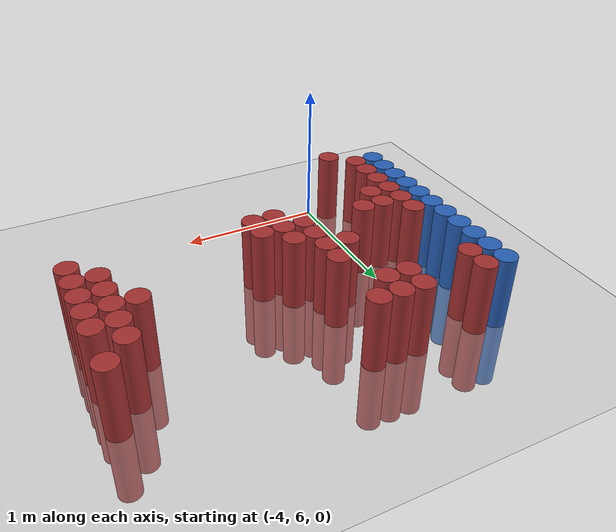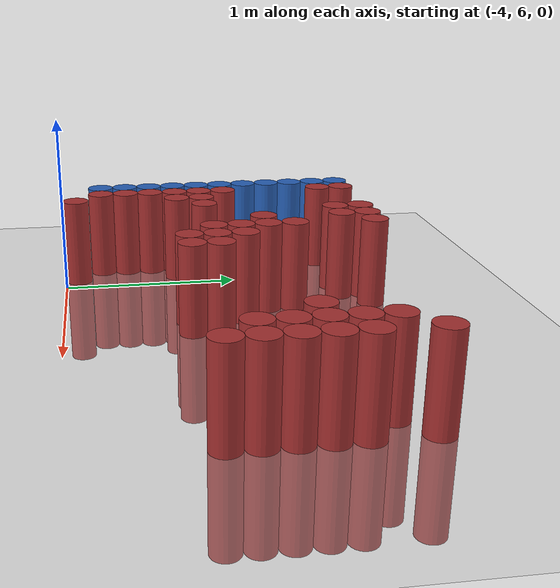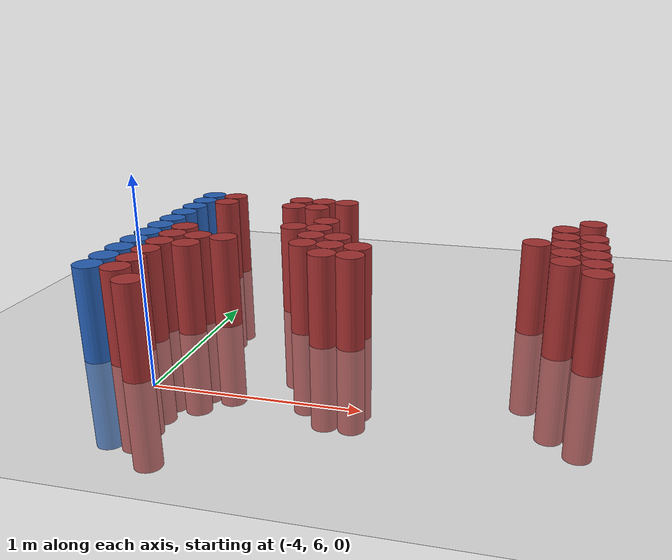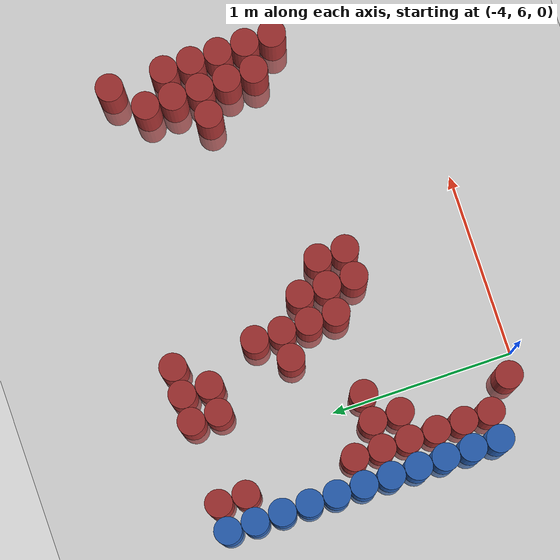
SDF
<sdf version="1.6">
 <world name="default">
  <model name="ground_plane">
   <static>1</static>
   <link name="link">
    <collision name="collision">
     <geometry><plane><normal>0 0 1</normal><size>100 100</size></plane></geometry>
     <surface><friction><ode><mu>100</mu><mu2>50</mu2></ode></friction></surface>
    </collision>
    <visual name="visual">
     <cast_shadows>0</cast_shadows>
     <geometry><plane><normal>0 0 1</normal><size>100 100</size></plane></geometry>
     <material>
      <script><uri>file://media/materials/scripts/gazebo.material</uri><name>Gazebo/Grey</name></script>
     </material>
    </visual>
   </link>
  </model>
  <model name="unit_cylinder_103">
   <static>1</static>
   <pose>-4.425000 6.225000 0.000000 0.000000 0.000000 0.000000</pose>
   <link name="link">
    <inertial>
     <mass>1</mass>
     <inertia><ixx>0.145833</ixx><ixy>0</ixy><ixz>0</ixz><iyy>0.145833</iyy><iyz>0</iyz><izz>0.125</izz></inertia>
    </inertial>
    <collision name="collision">
     <geometry><cylinder><radius>0.075000</radius><length>1</length></cylinder></geometry>
    </collision>
    <visual name="visual">
     <geometry><cylinder><radius>0.075000</radius><length>1</length></cylinder></geometry>
     <material>
      <ambient>0.152000 0.379000 0.720000 1</ambient>
      <diffuse>0.152000 0.379000 0.720000 1</diffuse>
     </material>
     <material>
      <script><name>Gazebo/Grey</name><uri>file://media/materials/scripts/gazebo.material</uri></script>
     </material>
    </visual>
   </link>
  </model>
  <model name="unit_cylinder_104">
   <static>1</static>
   <pose>-4.425000 6.375000 0.000000 0.000000 0.000000 0.000000</pose>
   <link name="link">
    <inertial>
     <mass>1</mass>
     <inertia><ixx>0.145833</ixx><ixy>0</ixy><ixz>0</ixz><iyy>0.145833</iyy><iyz>0</iyz><izz>0.125</izz></inertia>
    </inertial>
    <collision name="collision">
     <geometry><cylinder><radius>0.075000</radius><length>1</length></cylinder></geometry>
    </collision>
    <visual name="visual">
     <geometry><cylinder><radius>0.075000</radius><length>1</length></cylinder></geometry>
     <material>
      <ambient>0.152000 0.379000 0.720000 1</ambient>
      <diffuse>0.152000 0.379000 0.720000 1</diffuse>
     </material>
     <material>
      <script><name>Gazebo/Grey</name><uri>file://media/materials/scripts/gazebo.material</uri></script>
     </material>
    </visual>
   </link>
  </model>
  <model name="unit_cylinder_105">
   <static>1</static>
   <pose>-4.425000 6.525000 0.000000 0.000000 0.000000 0.000000</pose>
   <link name="link">
    <inertial>
     <mass>1</mass>
     <inertia><ixx>0.145833</ixx><ixy>0</ixy><ixz>0</ixz><iyy>0.145833</iyy><iyz>0</iyz><izz>0.125</izz></inertia>
    </inertial>
    <collision name="collision">
     <geometry><cylinder><radius>0.075000</radius><length>1</length></cylinder></geometry>
    </collision>
    <visual name="visual">
     <geometry><cylinder><radius>0.075000</radius><length>1</length></cylinder></geometry>
     <material>
      <ambient>0.152000 0.379000 0.720000 1</ambient>
      <diffuse>0.152000 0.379000 0.720000 1</diffuse>
     </material>
     <material>
      <script><name>Gazebo/Grey</name><uri>file://media/materials/scripts/gazebo.material</uri></script>
     </material>
    </visual>
   </link>
  </model>
  <model name="unit_cylinder_106">
   <static>1</static>
   <pose>-4.425000 6.675000 0.000000 0.000000 0.000000 0.000000</pose>
   <link name="link">
    <inertial>
     <mass>1</mass>
     <inertia><ixx>0.145833</ixx><ixy>0</ixy><ixz>0</ixz><iyy>0.145833</iyy><iyz>0</iyz><izz>0.125</izz></inertia>
    </inertial>
    <collision name="collision">
     <geometry><cylinder><radius>0.075000</radius><length>1</length></cylinder></geometry>
    </collision>
    <visual name="visual">
     <geometry><cylinder><radius>0.075000</radius><length>1</length></cylinder></geometry>
     <material>
      <ambient>0.152000 0.379000 0.720000 1</ambient>
      <diffuse>0.152000 0.379000 0.720000 1</diffuse>
     </material>
     <material>
      <script><name>Gazebo/Grey</name><uri>file://media/materials/scripts/gazebo.material</uri></script>
     </material>
    </visual>
   </link>
  </model>
  <model name="unit_cylinder_107">
   <static>1</static>
   <pose>-4.425000 6.825000 0.000000 0.000000 0.000000 0.000000</pose>
   <link name="link">
    <inertial>
     <mass>1</mass>
     <inertia><ixx>0.145833</ixx><ixy>0</ixy><ixz>0</ixz><iyy>0.145833</iyy><iyz>0</iyz><izz>0.125</izz></inertia>
    </inertial>
    <collision name="collision">
     <geometry><cylinder><radius>0.075000</radius><length>1</length></cylinder></geometry>
    </collision>
    <visual name="visual">
     <geometry><cylinder><radius>0.075000</radius><length>1</length></cylinder></geometry>
     <material>
      <ambient>0.152000 0.379000 0.720000 1</ambient>
      <diffuse>0.152000 0.379000 0.720000 1</diffuse>
     </material>
     <material>
      <script><name>Gazebo/Grey</name><uri>file://media/materials/scripts/gazebo.material</uri></script>
     </material>
    </visual>
   </link>
  </model>
  <model name="unit_cylinder_108">
   <static>1</static>
   <pose>-4.425000 6.975000 0.000000 0.000000 0.000000 0.000000</pose>
   <link name="link">
    <inertial>
     <mass>1</mass>
     <inertia><ixx>0.145833</ixx><ixy>0</ixy><ixz>0</ixz><iyy>0.145833</iyy><iyz>0</iyz><izz>0.125</izz></inertia>
    </inertial>
    <collision name="collision">
     <geometry><cylinder><radius>0.075000</radius><length>1</length></cylinder></geometry>
    </collision>
    <visual name="visual">
     <geometry><cylinder><radius>0.075000</radius><length>1</length></cylinder></geometry>
     <material>
      <ambient>0.152000 0.379000 0.720000 1</ambient>
      <diffuse>0.152000 0.379000 0.720000 1</diffuse>
     </material>
     <material>
      <script><name>Gazebo/Grey</name><uri>file://media/materials/scripts/gazebo.material</uri></script>
     </material>
    </visual>
   </link>
  </model>
  <model name="unit_cylinder_109">
   <static>1</static>
   <pose>-4.425000 7.125000 0.000000 0.000000 0.000000 0.000000</pose>
   <link name="link">
    <inertial>
     <mass>1</mass>
     <inertia><ixx>0.145833</ixx><ixy>0</ixy><ixz>0</ixz><iyy>0.145833</iyy><iyz>0</iyz><izz>0.125</izz></inertia>
    </inertial>
    <collision name="collision">
     <geometry><cylinder><radius>0.075000</radius><length>1</length></cylinder></geometry>
    </collision>
    <visual name="visual">
     <geometry><cylinder><radius>0.075000</radius><length>1</length></cylinder></geometry>
     <material>
      <ambient>0.152000 0.379000 0.720000 1</ambient>
      <diffuse>0.152000 0.379000 0.720000 1</diffuse>
     </material>
     <material>
      <script><name>Gazebo/Grey</name><uri>file://media/materials/scripts/gazebo.material</uri></script>
     </material>
    </visual>
   </link>
  </model>
  <model name="unit_cylinder_110">
   <static>1</static>
   <pose>-4.425000 7.275000 0.000000 0.000000 0.000000 0.000000</pose>
   <link name="link">
    <inertial>
     <mass>1</mass>
     <inertia><ixx>0.145833</ixx><ixy>0</ixy><ixz>0</ixz><iyy>0.145833</iyy><iyz>0</iyz><izz>0.125</izz></inertia>
    </inertial>
    <collision name="collision">
     <geometry><cylinder><radius>0.075000</radius><length>1</length></cylinder></geometry>
    </collision>
    <visual name="visual">
     <geometry><cylinder><radius>0.075000</radius><length>1</length></cylinder></geometry>
     <material>
      <ambient>0.152000 0.379000 0.720000 1</ambient>
      <diffuse>0.152000 0.379000 0.720000 1</diffuse>
     </material>
     <material>
      <script><name>Gazebo/Grey</name><uri>file://media/materials/scripts/gazebo.material</uri></script>
     </material>
    </visual>
   </link>
  </model>
  <model name="unit_cylinder_111">
   <static>1</static>
   <pose>-4.425000 7.425000 0.000000 0.000000 0.000000 0.000000</pose>
   <link name="link">
    <inertial>
     <mass>1</mass>
     <inertia><ixx>0.145833</ixx><ixy>0</ixy><ixz>0</ixz><iyy>0.145833</iyy><iyz>0</iyz><izz>0.125</izz></inertia>
    </inertial>
    <collision name="collision">
     <geometry><cylinder><radius>0.075000</radius><length>1</length></cylinder></geometry>
    </collision>
    <visual name="visual">
     <geometry><cylinder><radius>0.075000</radius><length>1</length></cylinder></geometry>
     <material>
      <ambient>0.152000 0.379000 0.720000 1</ambient>
      <diffuse>0.152000 0.379000 0.720000 1</diffuse>
     </material>
     <material>
      <script><name>Gazebo/Grey</name><uri>file://media/materials/scripts/gazebo.material</uri></script>
     </material>
    </visual>
   </link>
  </model>
  <model name="unit_cylinder_112">
   <static>1</static>
   <pose>-4.425000 7.575000 0.000000 0.000000 0.000000 0.000000</pose>
   <link name="link">
    <inertial>
     <mass>1</mass>
     <inertia><ixx>0.145833</ixx><ixy>0</ixy><ixz>0</ixz><iyy>0.145833</iyy><iyz>0</iyz><izz>0.125</izz></inertia>
    </inertial>
    <collision name="collision">
     <geometry><cylinder><radius>0.075000</radius><length>1</length></cylinder></geometry>
    </collision>
    <visual name="visual">
     <geometry><cylinder><radius>0.075000</radius><length>1</length></cylinder></geometry>
     <material>
      <ambient>0.152000 0.379000 0.720000 1</ambient>
      <diffuse>0.152000 0.379000 0.720000 1</diffuse>
     </material>
     <material>
      <script><name>Gazebo/Grey</name><uri>file://media/materials/scripts/gazebo.material</uri></script>
     </material>
    </visual>
   </link>
  </model>
  <model name="unit_cylinder_113">
   <static>1</static>
   <pose>-4.425000 7.725000 0.000000 0.000000 0.000000 0.000000</pose>
   <link name="link">
    <inertial>
     <mass>1</mass>
     <inertia><ixx>0.145833</ixx><ixy>0</ixy><ixz>0</ixz><iyy>0.145833</iyy><iyz>0</iyz><izz>0.125</izz></inertia>
    </inertial>
    <collision name="collision">
     <geometry><cylinder><radius>0.075000</radius><length>1</length></cylinder></geometry>
    </collision>
    <visual name="visual">
     <geometry><cylinder><radius>0.075000</radius><length>1</length></cylinder></geometry>
     <material>
      <ambient>0.152000 0.379000 0.720000 1</ambient>
      <diffuse>0.152000 0.379000 0.720000 1</diffuse>
     </material>
     <material>
      <script><name>Gazebo/Grey</name><uri>file://media/materials/scripts/gazebo.material</uri></script>
     </material>
    </visual>
   </link>
  </model>
  <model name="unit_cylinder_132">
   <static>1</static>
   <pose>-4.275000 6.225000 0.000000 0.000000 0.000000 0.000000</pose>
   <link name="link">
    <inertial>
     <mass>1</mass>
     <inertia><ixx>0.145833</ixx><ixy>0</ixy><ixz>0</ixz><iyy>0.145833</iyy><iyz>0</iyz><izz>0.125</izz></inertia>
    </inertial>
    <collision name="collision">
     <geometry><cylinder><radius>0.075000</radius><length>1</length></cylinder></geometry>
    </collision>
    <visual name="visual">
     <geometry><cylinder><radius>0.075000</radius><length>1</length></cylinder></geometry>
     <material>
      <ambient>0.648000 0.192000 0.192000 1</ambient>
      <diffuse>0.648000 0.192000 0.192000 1</diffuse>
     </material>
     <material>
      <script><name>Gazebo/Grey</name><uri>file://media/materials/scripts/gazebo.material</uri></script>
     </material>
    </visual>
   </link>
  </model>
  <model name="unit_cylinder_133">
   <static>1</static>
   <pose>-4.275000 6.375000 0.000000 0.000000 0.000000 0.000000</pose>
   <link name="link">
    <inertial>
     <mass>1</mass>
     <inertia><ixx>0.145833</ixx><ixy>0</ixy><ixz>0</ixz><iyy>0.145833</iyy><iyz>0</iyz><izz>0.125</izz></inertia>
    </inertial>
    <collision name="collision">
     <geometry><cylinder><radius>0.075000</radius><length>1</length></cylinder></geometry>
    </collision>
    <visual name="visual">
     <geometry><cylinder><radius>0.075000</radius><length>1</length></cylinder></geometry>
     <material>
      <ambient>0.648000 0.192000 0.192000 1</ambient>
      <diffuse>0.648000 0.192000 0.192000 1</diffuse>
     </material>
     <material>
      <script><name>Gazebo/Grey</name><uri>file://media/materials/scripts/gazebo.material</uri></script>
     </material>
    </visual>
   </link>
  </model>
  <model name="unit_cylinder_134">
   <static>1</static>
   <pose>-4.275000 6.525000 0.000000 0.000000 0.000000 0.000000</pose>
   <link name="link">
    <inertial>
     <mass>1</mass>
     <inertia><ixx>0.145833</ixx><ixy>0</ixy><ixz>0</ixz><iyy>0.145833</iyy><iyz>0</iyz><izz>0.125</izz></inertia>
    </inertial>
    <collision name="collision">
     <geometry><cylinder><radius>0.075000</radius><length>1</length></cylinder></geometry>
    </collision>
    <visual name="visual">
     <geometry><cylinder><radius>0.075000</radius><length>1</length></cylinder></geometry>
     <material>
      <ambient>0.648000 0.192000 0.192000 1</ambient>
      <diffuse>0.648000 0.192000 0.192000 1</diffuse>
     </material>
     <material>
      <script><name>Gazebo/Grey</name><uri>file://media/materials/scripts/gazebo.material</uri></script>
     </material>
    </visual>
   </link>
  </model>
  <model name="unit_cylinder_135">
   <static>1</static>
   <pose>-4.275000 6.675000 0.000000 0.000000 0.000000 0.000000</pose>
   <link name="link">
    <inertial>
     <mass>1</mass>
     <inertia><ixx>0.145833</ixx><ixy>0</ixy><ixz>0</ixz><iyy>0.145833</iyy><iyz>0</iyz><izz>0.125</izz></inertia>
    </inertial>
    <collision name="collision">
     <geometry><cylinder><radius>0.075000</radius><length>1</length></cylinder></geometry>
    </collision>
    <visual name="visual">
     <geometry><cylinder><radius>0.075000</radius><length>1</length></cylinder></geometry>
     <material>
      <ambient>0.648000 0.192000 0.192000 1</ambient>
      <diffuse>0.648000 0.192000 0.192000 1</diffuse>
     </material>
     <material>
      <script><name>Gazebo/Grey</name><uri>file://media/materials/scripts/gazebo.material</uri></script>
     </material>
    </visual>
   </link>
  </model>
  <model name="unit_cylinder_136">
   <static>1</static>
   <pose>-4.275000 6.825000 0.000000 0.000000 0.000000 0.000000</pose>
   <link name="link">
    <inertial>
     <mass>1</mass>
     <inertia><ixx>0.145833</ixx><ixy>0</ixy><ixz>0</ixz><iyy>0.145833</iyy><iyz>0</iyz><izz>0.125</izz></inertia>
    </inertial>
    <collision name="collision">
     <geometry><cylinder><radius>0.075000</radius><length>1</length></cylinder></geometry>
    </collision>
    <visual name="visual">
     <geometry><cylinder><radius>0.075000</radius><length>1</length></cylinder></geometry>
     <material>
      <ambient>0.648000 0.192000 0.192000 1</ambient>
      <diffuse>0.648000 0.192000 0.192000 1</diffuse>
     </material>
     <material>
      <script><name>Gazebo/Grey</name><uri>file://media/materials/scripts/gazebo.material</uri></script>
     </material>
    </visual>
   </link>
  </model>
  <model name="unit_cylinder_137">
   <static>1</static>
   <pose>-4.275000 6.975000 0.000000 0.000000 0.000000 0.000000</pose>
   <link name="link">
    <inertial>
     <mass>1</mass>
     <inertia><ixx>0.145833</ixx><ixy>0</ixy><ixz>0</ixz><iyy>0.145833</iyy><iyz>0</iyz><izz>0.125</izz></inertia>
    </inertial>
    <collision name="collision">
     <geometry><cylinder><radius>0.075000</radius><length>1</length></cylinder></geometry>
    </collision>
    <visual name="visual">
     <geometry><cylinder><radius>0.075000</radius><length>1</length></cylinder></geometry>
     <material>
      <ambient>0.648000 0.192000 0.192000 1</ambient>
      <diffuse>0.648000 0.192000 0.192000 1</diffuse>
     </material>
     <material>
      <script><name>Gazebo/Grey</name><uri>file://media/materials/scripts/gazebo.material</uri></script>
     </material>
    </visual>
   </link>
  </model>
  <model name="unit_cylinder_138">
   <static>1</static>
   <pose>-4.275000 7.575000 0.000000 0.000000 0.000000 0.000000</pose>
   <link name="link">
    <inertial>
     <mass>1</mass>
     <inertia><ixx>0.145833</ixx><ixy>0</ixy><ixz>0</ixz><iyy>0.145833</iyy><iyz>0</iyz><izz>0.125</izz></inertia>
    </inertial>
    <collision name="collision">
     <geometry><cylinder><radius>0.075000</radius><length>1</length></cylinder></geometry>
    </collision>
    <visual name="visual">
     <geometry><cylinder><radius>0.075000</radius><length>1</length></cylinder></geometry>
     <material>
      <ambient>0.648000 0.192000 0.192000 1</ambient>
      <diffuse>0.648000 0.192000 0.192000 1</diffuse>
     </material>
     <material>
      <script><name>Gazebo/Grey</name><uri>file://media/materials/scripts/gazebo.material</uri></script>
     </material>
    </visual>
   </link>
  </model>
  <model name="unit_cylinder_139">
   <static>1</static>
   <pose>-4.275000 7.725000 0.000000 0.000000 0.000000 0.000000</pose>
   <link name="link">
    <inertial>
     <mass>1</mass>
     <inertia><ixx>0.145833</ixx><ixy>0</ixy><ixz>0</ixz><iyy>0.145833</iyy><iyz>0</iyz><izz>0.125</izz></inertia>
    </inertial>
    <collision name="collision">
     <geometry><cylinder><radius>0.075000</radius><length>1</length></cylinder></geometry>
    </collision>
    <visual name="visual">
     <geometry><cylinder><radius>0.075000</radius><length>1</length></cylinder></geometry>
     <material>
      <ambient>0.648000 0.192000 0.192000 1</ambient>
      <diffuse>0.648000 0.192000 0.192000 1</diffuse>
     </material>
     <material>
      <script><name>Gazebo/Grey</name><uri>file://media/materials/scripts/gazebo.material</uri></script>
     </material>
    </visual>
   </link>
  </model>
  <model name="unit_cylinder_143">
   <static>1</static>
   <pose>-4.125000 6.075000 0.000000 0.000000 0.000000 0.000000</pose>
   <link name="link">
    <inertial>
     <mass>1</mass>
     <inertia><ixx>0.145833</ixx><ixy>0</ixy><ixz>0</ixz><iyy>0.145833</iyy><iyz>0</iyz><izz>0.125</izz></inertia>
    </inertial>
    <collision name="collision">
     <geometry><cylinder><radius>0.075000</radius><length>1</length></cylinder></geometry>
    </collision>
    <visual name="visual">
     <geometry><cylinder><radius>0.075000</radius><length>1</length></cylinder></geometry>
     <material>
      <ambient>0.648000 0.192000 0.192000 1</ambient>
      <diffuse>0.648000 0.192000 0.192000 1</diffuse>
     </material>
     <material>
      <script><name>Gazebo/Grey</name><uri>file://media/materials/scripts/gazebo.material</uri></script>
     </material>
    </visual>
   </link>
  </model>
  <model name="unit_cylinder_144">
   <static>1</static>
   <pose>-4.125000 6.675000 0.000000 0.000000 0.000000 0.000000</pose>
   <link name="link">
    <inertial>
     <mass>1</mass>
     <inertia><ixx>0.145833</ixx><ixy>0</ixy><ixz>0</ixz><iyy>0.145833</iyy><iyz>0</iyz><izz>0.125</izz></inertia>
    </inertial>
    <collision name="collision">
     <geometry><cylinder><radius>0.075000</radius><length>1</length></cylinder></geometry>
    </collision>
    <visual name="visual">
     <geometry><cylinder><radius>0.075000</radius><length>1</length></cylinder></geometry>
     <material>
      <ambient>0.648000 0.192000 0.192000 1</ambient>
      <diffuse>0.648000 0.192000 0.192000 1</diffuse>
     </material>
     <material>
      <script><name>Gazebo/Grey</name><uri>file://media/materials/scripts/gazebo.material</uri></script>
     </material>
    </visual>
   </link>
  </model>
  <model name="unit_cylinder_145">
   <static>1</static>
   <pose>-4.125000 6.825000 0.000000 0.000000 0.000000 0.000000</pose>
   <link name="link">
    <inertial>
     <mass>1</mass>
     <inertia><ixx>0.145833</ixx><ixy>0</ixy><ixz>0</ixz><iyy>0.145833</iyy><iyz>0</iyz><izz>0.125</izz></inertia>
    </inertial>
    <collision name="collision">
     <geometry><cylinder><radius>0.075000</radius><length>1</length></cylinder></geometry>
    </collision>
    <visual name="visual">
     <geometry><cylinder><radius>0.075000</radius><length>1</length></cylinder></geometry>
     <material>
      <ambient>0.648000 0.192000 0.192000 1</ambient>
      <diffuse>0.648000 0.192000 0.192000 1</diffuse>
     </material>
     <material>
      <script><name>Gazebo/Grey</name><uri>file://media/materials/scripts/gazebo.material</uri></script>
     </material>
    </visual>
   </link>
  </model>
  <model name="unit_cylinder_147">
   <static>1</static>
   <pose>-3.975000 6.825000 0.000000 0.000000 0.000000 0.000000</pose>
   <link name="link">
    <inertial>
     <mass>1</mass>
     <inertia><ixx>0.145833</ixx><ixy>0</ixy><ixz>0</ixz><iyy>0.145833</iyy><iyz>0</iyz><izz>0.125</izz></inertia>
    </inertial>
    <collision name="collision">
     <geometry><cylinder><radius>0.075000</radius><length>1</length></cylinder></geometry>
    </collision>
    <visual name="visual">
     <geometry><cylinder><radius>0.075000</radius><length>1</length></cylinder></geometry>
     <material>
      <ambient>0.648000 0.192000 0.192000 1</ambient>
      <diffuse>0.648000 0.192000 0.192000 1</diffuse>
     </material>
     <material>
      <script><name>Gazebo/Grey</name><uri>file://media/materials/scripts/gazebo.material</uri></script>
     </material>
    </visual>
   </link>
  </model>
  <model name="unit_cylinder_149">
   <static>1</static>
   <pose>-3.825000 7.575000 0.000000 0.000000 0.000000 0.000000</pose>
   <link name="link">
    <inertial>
     <mass>1</mass>
     <inertia><ixx>0.145833</ixx><ixy>0</ixy><ixz>0</ixz><iyy>0.145833</iyy><iyz>0</iyz><izz>0.125</izz></inertia>
    </inertial>
    <collision name="collision">
     <geometry><cylinder><radius>0.075000</radius><length>1</length></cylinder></geometry>
    </collision>
    <visual name="visual">
     <geometry><cylinder><radius>0.075000</radius><length>1</length></cylinder></geometry>
     <material>
      <ambient>0.648000 0.192000 0.192000 1</ambient>
      <diffuse>0.648000 0.192000 0.192000 1</diffuse>
     </material>
     <material>
      <script><name>Gazebo/Grey</name><uri>file://media/materials/scripts/gazebo.material</uri></script>
     </material>
    </visual>
   </link>
  </model>
  <model name="unit_cylinder_150">
   <static>1</static>
   <pose>-3.825000 7.725000 0.000000 0.000000 0.000000 0.000000</pose>
   <link name="link">
    <inertial>
     <mass>1</mass>
     <inertia><ixx>0.145833</ixx><ixy>0</ixy><ixz>0</ixz><iyy>0.145833</iyy><iyz>0</iyz><izz>0.125</izz></inertia>
    </inertial>
    <collision name="collision">
     <geometry><cylinder><radius>0.075000</radius><length>1</length></cylinder></geometry>
    </collision>
    <visual name="visual">
     <geometry><cylinder><radius>0.075000</radius><length>1</length></cylinder></geometry>
     <material>
      <ambient>0.648000 0.192000 0.192000 1</ambient>
      <diffuse>0.648000 0.192000 0.192000 1</diffuse>
     </material>
     <material>
      <script><name>Gazebo/Grey</name><uri>file://media/materials/scripts/gazebo.material</uri></script>
     </material>
    </visual>
   </link>
  </model>
  <model name="unit_cylinder_155">
   <static>1</static>
   <pose>-3.675000 7.125000 0.000000 0.000000 0.000000 0.000000</pose>
   <link name="link">
    <inertial>
     <mass>1</mass>
     <inertia><ixx>0.145833</ixx><ixy>0</ixy><ixz>0</ixz><iyy>0.145833</iyy><iyz>0</iyz><izz>0.125</izz></inertia>
    </inertial>
    <collision name="collision">
     <geometry><cylinder><radius>0.075000</radius><length>1</length></cylinder></geometry>
    </collision>
    <visual name="visual">
     <geometry><cylinder><radius>0.075000</radius><length>1</length></cylinder></geometry>
     <material>
      <ambient>0.648000 0.192000 0.192000 1</ambient>
      <diffuse>0.648000 0.192000 0.192000 1</diffuse>
     </material>
     <material>
      <script><name>Gazebo/Grey</name><uri>file://media/materials/scripts/gazebo.material</uri></script>
     </material>
    </visual>
   </link>
  </model>
  <model name="unit_cylinder_156">
   <static>1</static>
   <pose>-3.675000 7.575000 0.000000 0.000000 0.000000 0.000000</pose>
   <link name="link">
    <inertial>
     <mass>1</mass>
     <inertia><ixx>0.145833</ixx><ixy>0</ixy><ixz>0</ixz><iyy>0.145833</iyy><iyz>0</iyz><izz>0.125</izz></inertia>
    </inertial>
    <collision name="collision">
     <geometry><cylinder><radius>0.075000</radius><length>1</length></cylinder></geometry>
    </collision>
    <visual name="visual">
     <geometry><cylinder><radius>0.075000</radius><length>1</length></cylinder></geometry>
     <material>
      <ambient>0.648000 0.192000 0.192000 1</ambient>
      <diffuse>0.648000 0.192000 0.192000 1</diffuse>
     </material>
     <material>
      <script><name>Gazebo/Grey</name><uri>file://media/materials/scripts/gazebo.material</uri></script>
     </material>
    </visual>
   </link>
  </model>
  <model name="unit_cylinder_157">
   <static>1</static>
   <pose>-3.675000 7.725000 0.000000 0.000000 0.000000 0.000000</pose>
   <link name="link">
    <inertial>
     <mass>1</mass>
     <inertia><ixx>0.145833</ixx><ixy>0</ixy><ixz>0</ixz><iyy>0.145833</iyy><iyz>0</iyz><izz>0.125</izz></inertia>
    </inertial>
    <collision name="collision">
     <geometry><cylinder><radius>0.075000</radius><length>1</length></cylinder></geometry>
    </collision>
    <visual name="visual">
     <geometry><cylinder><radius>0.075000</radius><length>1</length></cylinder></geometry>
     <material>
      <ambient>0.648000 0.192000 0.192000 1</ambient>
      <diffuse>0.648000 0.192000 0.192000 1</diffuse>
     </material>
     <material>
      <script><name>Gazebo/Grey</name><uri>file://media/materials/scripts/gazebo.material</uri></script>
     </material>
    </visual>
   </link>
  </model>
  <model name="unit_cylinder_165">
   <static>1</static>
   <pose>-3.525000 6.825000 0.000000 0.000000 0.000000 0.000000</pose>
   <link name="link">
    <inertial>
     <mass>1</mass>
     <inertia><ixx>0.145833</ixx><ixy>0</ixy><ixz>0</ixz><iyy>0.145833</iyy><iyz>0</iyz><izz>0.125</izz></inertia>
    </inertial>
    <collision name="collision">
     <geometry><cylinder><radius>0.075000</radius><length>1</length></cylinder></geometry>
    </collision>
    <visual name="visual">
     <geometry><cylinder><radius>0.075000</radius><length>1</length></cylinder></geometry>
     <material>
      <ambient>0.648000 0.192000 0.192000 1</ambient>
      <diffuse>0.648000 0.192000 0.192000 1</diffuse>
     </material>
     <material>
      <script><name>Gazebo/Grey</name><uri>file://media/materials/scripts/gazebo.material</uri></script>
     </material>
    </visual>
   </link>
  </model>
  <model name="unit_cylinder_166">
   <static>1</static>
   <pose>-3.525000 6.975000 0.000000 0.000000 0.000000 0.000000</pose>
   <link name="link">
    <inertial>
     <mass>1</mass>
     <inertia><ixx>0.145833</ixx><ixy>0</ixy><ixz>0</ixz><iyy>0.145833</iyy><iyz>0</iyz><izz>0.125</izz></inertia>
    </inertial>
    <collision name="collision">
     <geometry><cylinder><radius>0.075000</radius><length>1</length></cylinder></geometry>
    </collision>
    <visual name="visual">
     <geometry><cylinder><radius>0.075000</radius><length>1</length></cylinder></geometry>
     <material>
      <ambient>0.648000 0.192000 0.192000 1</ambient>
      <diffuse>0.648000 0.192000 0.192000 1</diffuse>
     </material>
     <material>
      <script><name>Gazebo/Grey</name><uri>file://media/materials/scripts/gazebo.material</uri></script>
     </material>
    </visual>
   </link>
  </model>
  <model name="unit_cylinder_167">
   <static>1</static>
   <pose>-3.525000 7.125000 0.000000 0.000000 0.000000 0.000000</pose>
   <link name="link">
    <inertial>
     <mass>1</mass>
     <inertia><ixx>0.145833</ixx><ixy>0</ixy><ixz>0</ixz><iyy>0.145833</iyy><iyz>0</iyz><izz>0.125</izz></inertia>
    </inertial>
    <collision name="collision">
     <geometry><cylinder><radius>0.075000</radius><length>1</length></cylinder></geometry>
    </collision>
    <visual name="visual">
     <geometry><cylinder><radius>0.075000</radius><length>1</length></cylinder></geometry>
     <material>
      <ambient>0.648000 0.192000 0.192000 1</ambient>
      <diffuse>0.648000 0.192000 0.192000 1</diffuse>
     </material>
     <material>
      <script><name>Gazebo/Grey</name><uri>file://media/materials/scripts/gazebo.material</uri></script>
     </material>
    </visual>
   </link>
  </model>
  <model name="unit_cylinder_168">
   <static>1</static>
   <pose>-3.525000 7.275000 0.000000 0.000000 0.000000 0.000000</pose>
   <link name="link">
    <inertial>
     <mass>1</mass>
     <inertia><ixx>0.145833</ixx><ixy>0</ixy><ixz>0</ixz><iyy>0.145833</iyy><iyz>0</iyz><izz>0.125</izz></inertia>
    </inertial>
    <collision name="collision">
     <geometry><cylinder><radius>0.075000</radius><length>1</length></cylinder></geometry>
    </collision>
    <visual name="visual">
     <geometry><cylinder><radius>0.075000</radius><length>1</length></cylinder></geometry>
     <material>
      <ambient>0.648000 0.192000 0.192000 1</ambient>
      <diffuse>0.648000 0.192000 0.192000 1</diffuse>
     </material>
     <material>
      <script><name>Gazebo/Grey</name><uri>file://media/materials/scripts/gazebo.material</uri></script>
     </material>
    </visual>
   </link>
  </model>
  <model name="unit_cylinder_169">
   <static>1</static>
   <pose>-3.525000 7.725000 0.000000 0.000000 0.000000 0.000000</pose>
   <link name="link">
    <inertial>
     <mass>1</mass>
     <inertia><ixx>0.145833</ixx><ixy>0</ixy><ixz>0</ixz><iyy>0.145833</iyy><iyz>0</iyz><izz>0.125</izz></inertia>
    </inertial>
    <collision name="collision">
     <geometry><cylinder><radius>0.075000</radius><length>1</length></cylinder></geometry>
    </collision>
    <visual name="visual">
     <geometry><cylinder><radius>0.075000</radius><length>1</length></cylinder></geometry>
     <material>
      <ambient>0.648000 0.192000 0.192000 1</ambient>
      <diffuse>0.648000 0.192000 0.192000 1</diffuse>
     </material>
     <material>
      <script><name>Gazebo/Grey</name><uri>file://media/materials/scripts/gazebo.material</uri></script>
     </material>
    </visual>
   </link>
  </model>
  <model name="unit_cylinder_177">
   <static>1</static>
   <pose>-3.375000 6.675000 0.000000 0.000000 0.000000 0.000000</pose>
   <link name="link">
    <inertial>
     <mass>1</mass>
     <inertia><ixx>0.145833</ixx><ixy>0</ixy><ixz>0</ixz><iyy>0.145833</iyy><iyz>0</iyz><izz>0.125</izz></inertia>
    </inertial>
    <collision name="collision">
     <geometry><cylinder><radius>0.075000</radius><length>1</length></cylinder></geometry>
    </collision>
    <visual name="visual">
     <geometry><cylinder><radius>0.075000</radius><length>1</length></cylinder></geometry>
     <material>
      <ambient>0.648000 0.192000 0.192000 1</ambient>
      <diffuse>0.648000 0.192000 0.192000 1</diffuse>
     </material>
     <material>
      <script><name>Gazebo/Grey</name><uri>file://media/materials/scripts/gazebo.material</uri></script>
     </material>
    </visual>
   </link>
  </model>
  <model name="unit_cylinder_178">
   <static>1</static>
   <pose>-3.375000 6.825000 0.000000 0.000000 0.000000 0.000000</pose>
   <link name="link">
    <inertial>
     <mass>1</mass>
     <inertia><ixx>0.145833</ixx><ixy>0</ixy><ixz>0</ixz><iyy>0.145833</iyy><iyz>0</iyz><izz>0.125</izz></inertia>
    </inertial>
    <collision name="collision">
     <geometry><cylinder><radius>0.075000</radius><length>1</length></cylinder></geometry>
    </collision>
    <visual name="visual">
     <geometry><cylinder><radius>0.075000</radius><length>1</length></cylinder></geometry>
     <material>
      <ambient>0.648000 0.192000 0.192000 1</ambient>
      <diffuse>0.648000 0.192000 0.192000 1</diffuse>
     </material>
     <material>
      <script><name>Gazebo/Grey</name><uri>file://media/materials/scripts/gazebo.material</uri></script>
     </material>
    </visual>
   </link>
  </model>
  <model name="unit_cylinder_179">
   <static>1</static>
   <pose>-3.375000 6.975000 0.000000 0.000000 0.000000 0.000000</pose>
   <link name="link">
    <inertial>
     <mass>1</mass>
     <inertia><ixx>0.145833</ixx><ixy>0</ixy><ixz>0</ixz><iyy>0.145833</iyy><iyz>0</iyz><izz>0.125</izz></inertia>
    </inertial>
    <collision name="collision">
     <geometry><cylinder><radius>0.075000</radius><length>1</length></cylinder></geometry>
    </collision>
    <visual name="visual">
     <geometry><cylinder><radius>0.075000</radius><length>1</length></cylinder></geometry>
     <material>
      <ambient>0.648000 0.192000 0.192000 1</ambient>
      <diffuse>0.648000 0.192000 0.192000 1</diffuse>
     </material>
     <material>
      <script><name>Gazebo/Grey</name><uri>file://media/materials/scripts/gazebo.material</uri></script>
     </material>
    </visual>
   </link>
  </model>
  <model name="unit_cylinder_187">
   <static>1</static>
   <pose>-3.225000 6.675000 0.000000 0.000000 0.000000 0.000000</pose>
   <link name="link">
    <inertial>
     <mass>1</mass>
     <inertia><ixx>0.145833</ixx><ixy>0</ixy><ixz>0</ixz><iyy>0.145833</iyy><iyz>0</iyz><izz>0.125</izz></inertia>
    </inertial>
    <collision name="collision">
     <geometry><cylinder><radius>0.075000</radius><length>1</length></cylinder></geometry>
    </collision>
    <visual name="visual">
     <geometry><cylinder><radius>0.075000</radius><length>1</length></cylinder></geometry>
     <material>
      <ambient>0.648000 0.192000 0.192000 1</ambient>
      <diffuse>0.648000 0.192000 0.192000 1</diffuse>
     </material>
     <material>
      <script><name>Gazebo/Grey</name><uri>file://media/materials/scripts/gazebo.material</uri></script>
     </material>
    </visual>
   </link>
  </model>
  <model name="unit_cylinder_188">
   <static>1</static>
   <pose>-3.225000 6.825000 0.000000 0.000000 0.000000 0.000000</pose>
   <link name="link">
    <inertial>
     <mass>1</mass>
     <inertia><ixx>0.145833</ixx><ixy>0</ixy><ixz>0</ixz><iyy>0.145833</iyy><iyz>0</iyz><izz>0.125</izz></inertia>
    </inertial>
    <collision name="collision">
     <geometry><cylinder><radius>0.075000</radius><length>1</length></cylinder></geometry>
    </collision>
    <visual name="visual">
     <geometry><cylinder><radius>0.075000</radius><length>1</length></cylinder></geometry>
     <material>
      <ambient>0.648000 0.192000 0.192000 1</ambient>
      <diffuse>0.648000 0.192000 0.192000 1</diffuse>
     </material>
     <material>
      <script><name>Gazebo/Grey</name><uri>file://media/materials/scripts/gazebo.material</uri></script>
     </material>
    </visual>
   </link>
  </model>
  <model name="unit_cylinder_193">
   <static>1</static>
   <pose>-2.325000 7.125000 0.000000 0.000000 0.000000 0.000000</pose>
   <link name="link">
    <inertial>
     <mass>1</mass>
     <inertia><ixx>0.145833</ixx><ixy>0</ixy><ixz>0</ixz><iyy>0.145833</iyy><iyz>0</iyz><izz>0.125</izz></inertia>
    </inertial>
    <collision name="collision">
     <geometry><cylinder><radius>0.075000</radius><length>1</length></cylinder></geometry>
    </collision>
    <visual name="visual">
     <geometry><cylinder><radius>0.075000</radius><length>1</length></cylinder></geometry>
     <material>
      <ambient>0.648000 0.192000 0.192000 1</ambient>
      <diffuse>0.648000 0.192000 0.192000 1</diffuse>
     </material>
     <material>
      <script><name>Gazebo/Grey</name><uri>file://media/materials/scripts/gazebo.material</uri></script>
     </material>
    </visual>
   </link>
  </model>
  <model name="unit_cylinder_195">
   <static>1</static>
   <pose>-2.175000 6.825000 0.000000 0.000000 0.000000 0.000000</pose>
   <link name="link">
    <inertial>
     <mass>1</mass>
     <inertia><ixx>0.145833</ixx><ixy>0</ixy><ixz>0</ixz><iyy>0.145833</iyy><iyz>0</iyz><izz>0.125</izz></inertia>
    </inertial>
    <collision name="collision">
     <geometry><cylinder><radius>0.075000</radius><length>1</length></cylinder></geometry>
    </collision>
    <visual name="visual">
     <geometry><cylinder><radius>0.075000</radius><length>1</length></cylinder></geometry>
     <material>
      <ambient>0.648000 0.192000 0.192000 1</ambient>
      <diffuse>0.648000 0.192000 0.192000 1</diffuse>
     </material>
     <material>
      <script><name>Gazebo/Grey</name><uri>file://media/materials/scripts/gazebo.material</uri></script>
     </material>
    </visual>
   </link>
  </model>
  <model name="unit_cylinder_196">
   <static>1</static>
   <pose>-2.175000 6.975000 0.000000 0.000000 0.000000 0.000000</pose>
   <link name="link">
    <inertial>
     <mass>1</mass>
     <inertia><ixx>0.145833</ixx><ixy>0</ixy><ixz>0</ixz><iyy>0.145833</iyy><iyz>0</iyz><izz>0.125</izz></inertia>
    </inertial>
    <collision name="collision">
     <geometry><cylinder><radius>0.075000</radius><length>1</length></cylinder></geometry>
    </collision>
    <visual name="visual">
     <geometry><cylinder><radius>0.075000</radius><length>1</length></cylinder></geometry>
     <material>
      <ambient>0.648000 0.192000 0.192000 1</ambient>
      <diffuse>0.648000 0.192000 0.192000 1</diffuse>
     </material>
     <material>
      <script><name>Gazebo/Grey</name><uri>file://media/materials/scripts/gazebo.material</uri></script>
     </material>
    </visual>
   </link>
  </model>
  <model name="unit_cylinder_197">
   <static>1</static>
   <pose>-2.175000 7.125000 0.000000 0.000000 0.000000 0.000000</pose>
   <link name="link">
    <inertial>
     <mass>1</mass>
     <inertia><ixx>0.145833</ixx><ixy>0</ixy><ixz>0</ixz><iyy>0.145833</iyy><iyz>0</iyz><izz>0.125</izz></inertia>
    </inertial>
    <collision name="collision">
     <geometry><cylinder><radius>0.075000</radius><length>1</length></cylinder></geometry>
    </collision>
    <visual name="visual">
     <geometry><cylinder><radius>0.075000</radius><length>1</length></cylinder></geometry>
     <material>
      <ambient>0.648000 0.192000 0.192000 1</ambient>
      <diffuse>0.648000 0.192000 0.192000 1</diffuse>
     </material>
     <material>
      <script><name>Gazebo/Grey</name><uri>file://media/materials/scripts/gazebo.material</uri></script>
     </material>
    </visual>
   </link>
  </model>
  <model name="unit_cylinder_198">
   <static>1</static>
   <pose>-2.175000 7.275000 0.000000 0.000000 0.000000 0.000000</pose>
   <link name="link">
    <inertial>
     <mass>1</mass>
     <inertia><ixx>0.145833</ixx><ixy>0</ixy><ixz>0</ixz><iyy>0.145833</iyy><iyz>0</iyz><izz>0.125</izz></inertia>
    </inertial>
    <collision name="collision">
     <geometry><cylinder><radius>0.075000</radius><length>1</length></cylinder></geometry>
    </collision>
    <visual name="visual">
     <geometry><cylinder><radius>0.075000</radius><length>1</length></cylinder></geometry>
     <material>
      <ambient>0.648000 0.192000 0.192000 1</ambient>
      <diffuse>0.648000 0.192000 0.192000 1</diffuse>
     </material>
     <material>
      <script><name>Gazebo/Grey</name><uri>file://media/materials/scripts/gazebo.material</uri></script>
     </material>
    </visual>
   </link>
  </model>
  <model name="unit_cylinder_199">
   <static>1</static>
   <pose>-2.175000 7.425000 0.000000 0.000000 0.000000 0.000000</pose>
   <link name="link">
    <inertial>
     <mass>1</mass>
     <inertia><ixx>0.145833</ixx><ixy>0</ixy><ixz>0</ixz><iyy>0.145833</iyy><iyz>0</iyz><izz>0.125</izz></inertia>
    </inertial>
    <collision name="collision">
     <geometry><cylinder><radius>0.075000</radius><length>1</length></cylinder></geometry>
    </collision>
    <visual name="visual">
     <geometry><cylinder><radius>0.075000</radius><length>1</length></cylinder></geometry>
     <material>
      <ambient>0.648000 0.192000 0.192000 1</ambient>
      <diffuse>0.648000 0.192000 0.192000 1</diffuse>
     </material>
     <material>
      <script><name>Gazebo/Grey</name><uri>file://media/materials/scripts/gazebo.material</uri></script>
     </material>
    </visual>
   </link>
  </model>
  <model name="unit_cylinder_206">
   <static>1</static>
   <pose>-2.025000 6.675000 0.000000 0.000000 0.000000 0.000000</pose>
   <link name="link">
    <inertial>
     <mass>1</mass>
     <inertia><ixx>0.145833</ixx><ixy>0</ixy><ixz>0</ixz><iyy>0.145833</iyy><iyz>0</iyz><izz>0.125</izz></inertia>
    </inertial>
    <collision name="collision">
     <geometry><cylinder><radius>0.075000</radius><length>1</length></cylinder></geometry>
    </collision>
    <visual name="visual">
     <geometry><cylinder><radius>0.075000</radius><length>1</length></cylinder></geometry>
     <material>
      <ambient>0.648000 0.192000 0.192000 1</ambient>
      <diffuse>0.648000 0.192000 0.192000 1</diffuse>
     </material>
     <material>
      <script><name>Gazebo/Grey</name><uri>file://media/materials/scripts/gazebo.material</uri></script>
     </material>
    </visual>
   </link>
  </model>
  <model name="unit_cylinder_207">
   <static>1</static>
   <pose>-2.025000 6.825000 0.000000 0.000000 0.000000 0.000000</pose>
   <link name="link">
    <inertial>
     <mass>1</mass>
     <inertia><ixx>0.145833</ixx><ixy>0</ixy><ixz>0</ixz><iyy>0.145833</iyy><iyz>0</iyz><izz>0.125</izz></inertia>
    </inertial>
    <collision name="collision">
     <geometry><cylinder><radius>0.075000</radius><length>1</length></cylinder></geometry>
    </collision>
    <visual name="visual">
     <geometry><cylinder><radius>0.075000</radius><length>1</length></cylinder></geometry>
     <material>
      <ambient>0.648000 0.192000 0.192000 1</ambient>
      <diffuse>0.648000 0.192000 0.192000 1</diffuse>
     </material>
     <material>
      <script><name>Gazebo/Grey</name><uri>file://media/materials/scripts/gazebo.material</uri></script>
     </material>
    </visual>
   </link>
  </model>
  <model name="unit_cylinder_208">
   <static>1</static>
   <pose>-2.025000 6.975000 0.000000 0.000000 0.000000 0.000000</pose>
   <link name="link">
    <inertial>
     <mass>1</mass>
     <inertia><ixx>0.145833</ixx><ixy>0</ixy><ixz>0</ixz><iyy>0.145833</iyy><iyz>0</iyz><izz>0.125</izz></inertia>
    </inertial>
    <collision name="collision">
     <geometry><cylinder><radius>0.075000</radius><length>1</length></cylinder></geometry>
    </collision>
    <visual name="visual">
     <geometry><cylinder><radius>0.075000</radius><length>1</length></cylinder></geometry>
     <material>
      <ambient>0.648000 0.192000 0.192000 1</ambient>
      <diffuse>0.648000 0.192000 0.192000 1</diffuse>
     </material>
     <material>
      <script><name>Gazebo/Grey</name><uri>file://media/materials/scripts/gazebo.material</uri></script>
     </material>
    </visual>
   </link>
  </model>
  <model name="unit_cylinder_209">
   <static>1</static>
   <pose>-2.025000 7.125000 0.000000 0.000000 0.000000 0.000000</pose>
   <link name="link">
    <inertial>
     <mass>1</mass>
     <inertia><ixx>0.145833</ixx><ixy>0</ixy><ixz>0</ixz><iyy>0.145833</iyy><iyz>0</iyz><izz>0.125</izz></inertia>
    </inertial>
    <collision name="collision">
     <geometry><cylinder><radius>0.075000</radius><length>1</length></cylinder></geometry>
    </collision>
    <visual name="visual">
     <geometry><cylinder><radius>0.075000</radius><length>1</length></cylinder></geometry>
     <material>
      <ambient>0.648000 0.192000 0.192000 1</ambient>
      <diffuse>0.648000 0.192000 0.192000 1</diffuse>
     </material>
     <material>
      <script><name>Gazebo/Grey</name><uri>file://media/materials/scripts/gazebo.material</uri></script>
     </material>
    </visual>
   </link>
  </model>
  <model name="unit_cylinder_210">
   <static>1</static>
   <pose>-2.025000 7.275000 0.000000 0.000000 0.000000 0.000000</pose>
   <link name="link">
    <inertial>
     <mass>1</mass>
     <inertia><ixx>0.145833</ixx><ixy>0</ixy><ixz>0</ixz><iyy>0.145833</iyy><iyz>0</iyz><izz>0.125</izz></inertia>
    </inertial>
    <collision name="collision">
     <geometry><cylinder><radius>0.075000</radius><length>1</length></cylinder></geometry>
    </collision>
    <visual name="visual">
     <geometry><cylinder><radius>0.075000</radius><length>1</length></cylinder></geometry>
     <material>
      <ambient>0.648000 0.192000 0.192000 1</ambient>
      <diffuse>0.648000 0.192000 0.192000 1</diffuse>
     </material>
     <material>
      <script><name>Gazebo/Grey</name><uri>file://media/materials/scripts/gazebo.material</uri></script>
     </material>
    </visual>
   </link>
  </model>
  <model name="unit_cylinder_211">
   <static>1</static>
   <pose>-2.025000 7.575000 0.000000 0.000000 0.000000 0.000000</pose>
   <link name="link">
    <inertial>
     <mass>1</mass>
     <inertia><ixx>0.145833</ixx><ixy>0</ixy><ixz>0</ixz><iyy>0.145833</iyy><iyz>0</iyz><izz>0.125</izz></inertia>
    </inertial>
    <collision name="collision">
     <geometry><cylinder><radius>0.075000</radius><length>1</length></cylinder></geometry>
    </collision>
    <visual name="visual">
     <geometry><cylinder><radius>0.075000</radius><length>1</length></cylinder></geometry>
     <material>
      <ambient>0.648000 0.192000 0.192000 1</ambient>
      <diffuse>0.648000 0.192000 0.192000 1</diffuse>
     </material>
     <material>
      <script><name>Gazebo/Grey</name><uri>file://media/materials/scripts/gazebo.material</uri></script>
     </material>
    </visual>
   </link>
  </model>
 </world>
</sdf>
